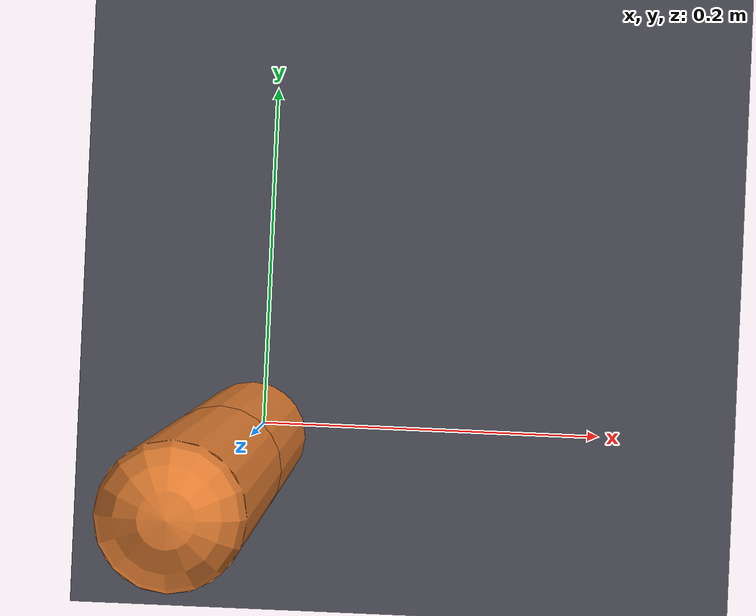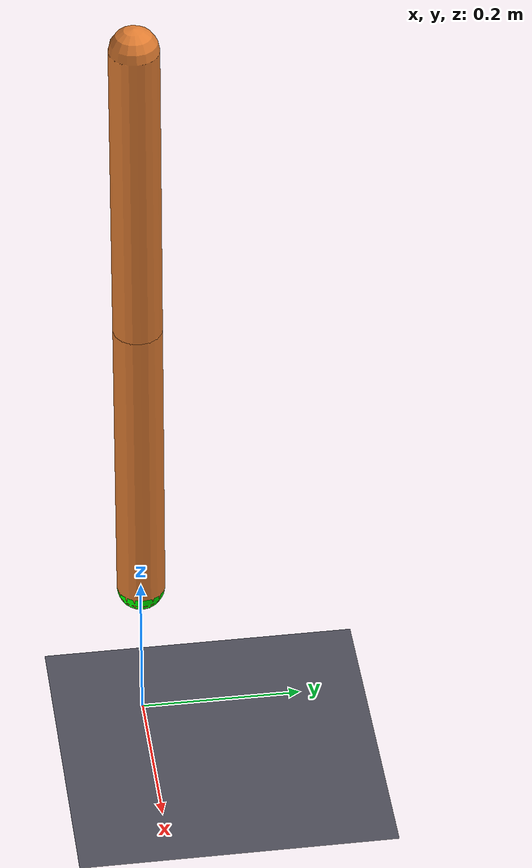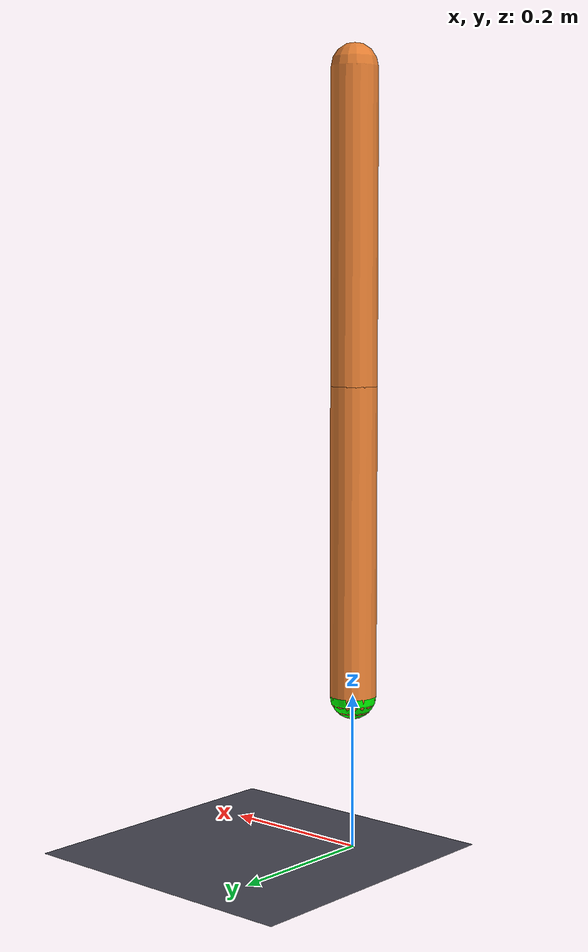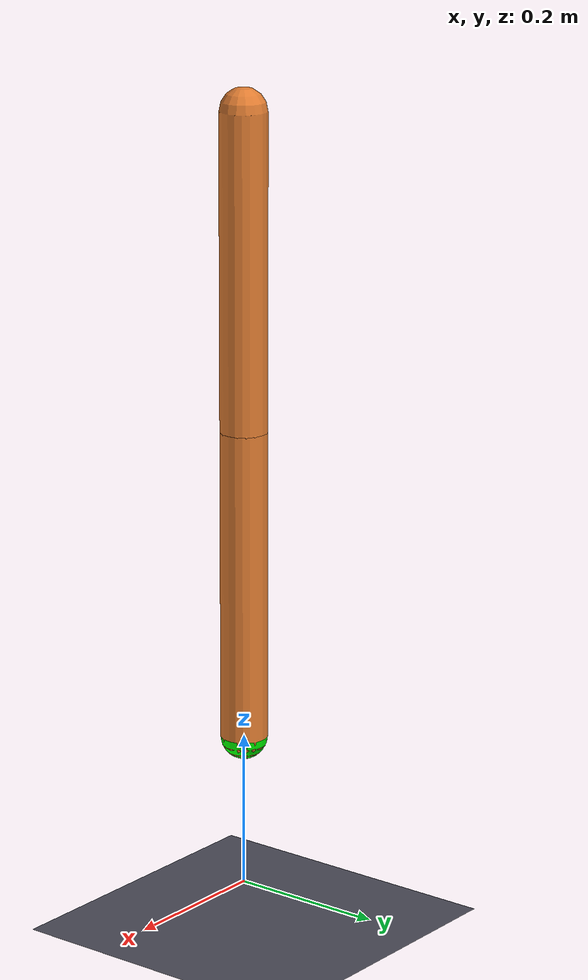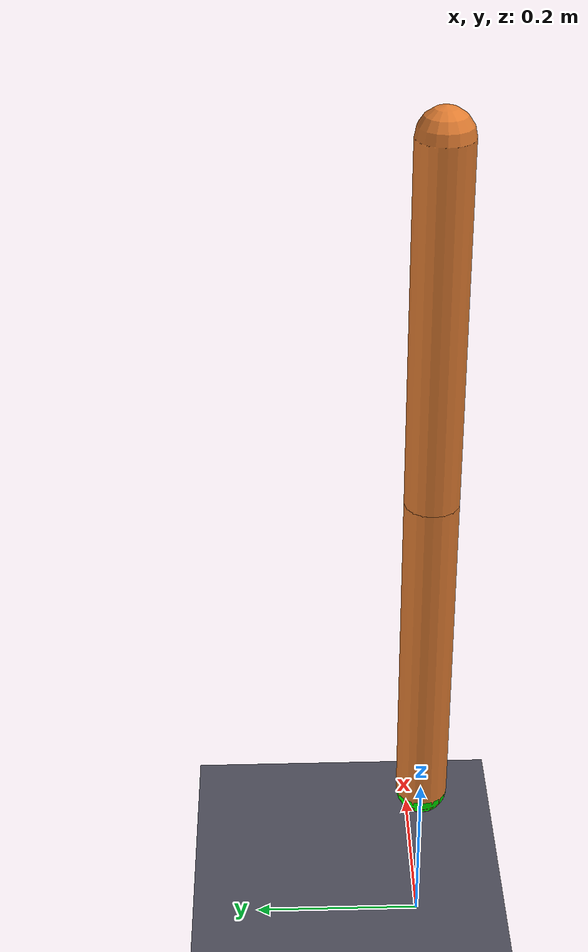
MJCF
<mujoco model="double_pendulum">

  <compiler angle="degree" autolimits="true"/>

  <option timestep="0.002" gravity="0 0 -9.81" integrator="implicitfast"/>

  <default>
    <joint type="hinge" damping="0.02" armature="0.01"/>
    <geom density="1000" rgba="0.7 0.7 0.75 1"/>

    <default class="link">
      <geom type="capsule" size="0.03" rgba="0.9 0.5 0.2 1"/>
    </default>

    <!-- keep TORQUE_LIMIT in env.py in sync with this -->
    <default class="motor">
      <motor ctrlrange="-4 4" ctrllimited="true"/>
    </default>
  </default>

  <worldbody>
    <light pos="0 0 1" dir="0 0 -1"/>
    <geom name="floor" type="plane" size="1 1 0.05" rgba="0.3 0.3 0.35 1"/>

    <!-- pivot height and link lengths are mirrored in env.py -->
    <body pos="0 0 1">
      <joint name="base" type="hinge" axis="0 1 0"/>
      <geom class="link" fromto="0 0 0 0 0 -0.4"/>
      <body pos="0 0 -0.4">
        <joint name="pivot" type="hinge" axis="0 1 0"/>
        <geom class="link" fromto="0 0 0 0 0 -0.4"/>
        <site name="tip" pos="0 0 -0.4" size="0.03" rgba="0 1 0 1"/>
      </body>
    </body>
  </worldbody>

  <actuator>
    <motor name="control_servo" class="motor" joint="base"/>
  </actuator>

  <sensor>
    <jointpos name="base_angle" joint="base"/>
    <jointpos name="pivot_angle" joint="pivot"/>
    <jointvel name="base_velocity" joint="base"/>
    <jointvel name="pivot_velocity" joint="pivot"/>
    <framepos name="tip_position" objtype="site" objname="tip"/>
  </sensor>

</mujoco>
